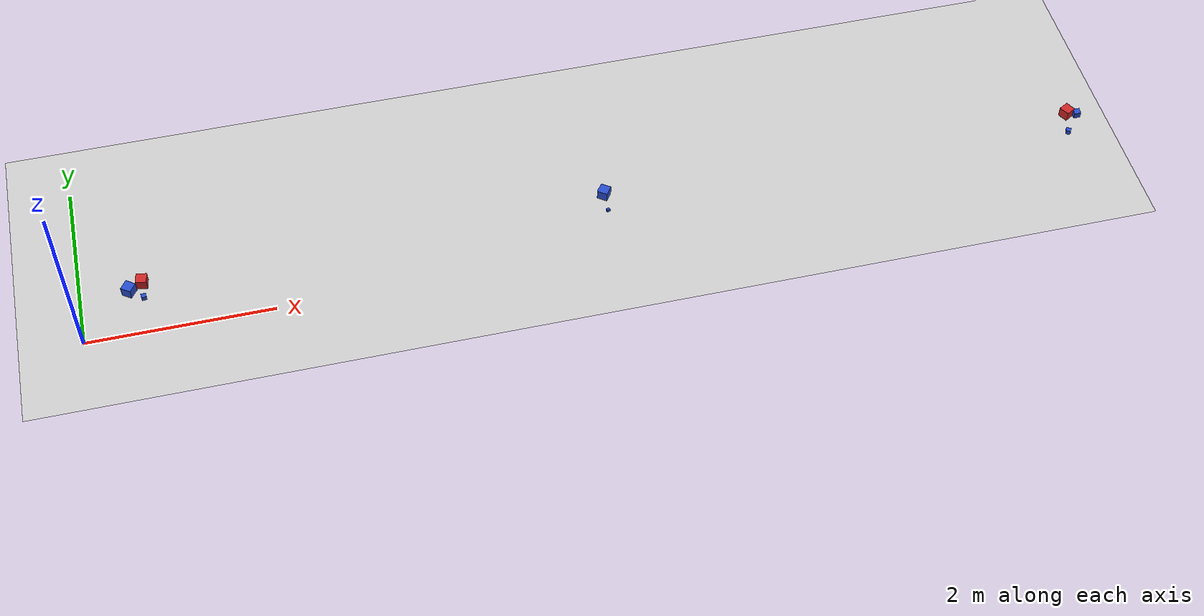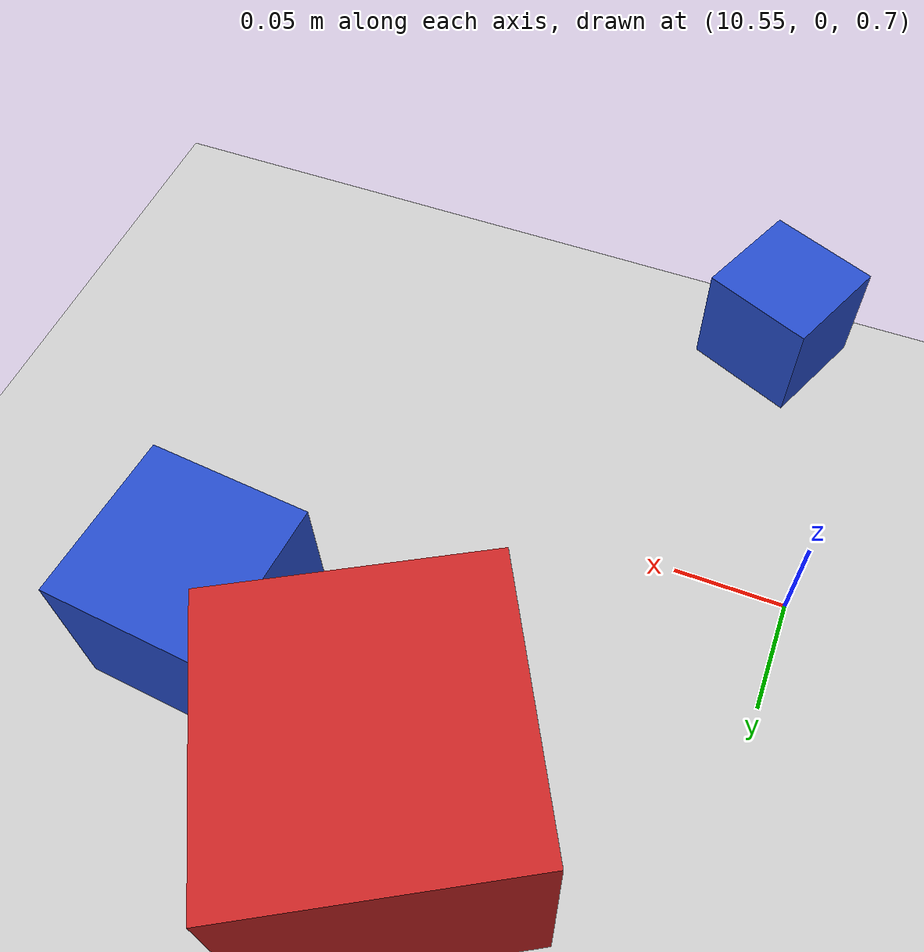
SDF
<sdf version="1.4">
 <world name="simple">
  <include><uri>model://ground_plane</uri></include>
  <include><uri>model://sun</uri></include>
  <include>
   <uri>model://blue_cube5cm</uri>
   <name>block12</name>
   <pose>0.730066971513 -0.12769212491 0.75 0 0 1.66587864993</pose>
  </include>
  <include>
   <uri>model://red_cube11cm</uri>
   <name>block13</name>
   <pose>0.727641051211 0.0737497676442 0.75 0 0 -0.150975424017</pose>
  </include>
  <include>
   <uri>model://blue_cube11cm</uri>
   <name>block14</name>
   <pose>0.591104014802 8.21343250178e-05 0.75 0 0 2.5332225067</pose>
  </include>
  <include>
   <uri>model://blue_cube3cm</uri>
   <name>block22</name>
   <pose>5.52646884927 -0.0759456710841 0.75 0 0 -1.13717460071</pose>
  </include>
  <include>
   <uri>model://blue_cube11cm</uri>
   <name>block24</name>
   <pose>5.54025575198 0.16300555334 0.75 0 0 -2.18083968026</pose>
  </include>
  <include>
   <uri>model://red_cube11cm</uri>
   <name>block31</name>
   <pose>10.6741734483 0.144886541127 0.75 0 0 -2.63304604453</pose>
  </include>
  <include>
   <uri>model://blue_cube5cm</uri>
   <name>block32</name>
   <pose>10.5894969987 -0.117903455708 0.75 0 0 -0.411705934907</pose>
  </include>
  <include>
   <uri>model://blue_cube7cm</uri>
   <name>block34</name>
   <pose>10.7703713925 0.103796053967 0.75 0 0 1.48151845706</pose>
  </include>
 </world>
</sdf>

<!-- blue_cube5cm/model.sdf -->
<sdf version='1.4'>
  <model name="blue_cube5cm">
      <static>0</static>
      <link name='link'>
        <inertial>
          <mass>0.3</mass>
          <inertia>
            <ixx>0.001</ixx>
            <ixy>0.000000</ixy>
            <ixz>0.000000</ixz>
            <iyy>0.001</iyy>
            <iyz>0.000000</iyz>
            <izz>0.001</izz>
          </inertia>
        </inertial>
        <collision name='collision'>
          <geometry>
            <box>
              <size>0.050 0.050 0.050</size>
            </box>
          </geometry>
          <surface>
            <friction>
              <ode>
                <mu>5.0</mu>
                <mu2>5.0</mu2>
              </ode>
            </friction>
            <contact>
              <ode>
                <kp>1000000.0</kp>
                <kd>100.0</kd>
                <max_vel>1.0</max_vel>
                <min_depth>0.002</min_depth>
              </ode>
            </contact>
          </surface>
        </collision>
        <visual name='visual'>
          <geometry>
            <box>
              <size>0.050 0.050 0.050</size>
            </box>
          </geometry>
          <material>
            <script>
              <uri>file://media/materials/scripts/gazebo.material</uri>
              <name>Gazebo/Blue</name>
            </script>
          </material>
        </visual>
        <velocity_decay>
          <linear>0.000000</linear>
          <angular>0.000000</angular>
        </velocity_decay>
        <self_collide>0</self_collide>
        <kinematic>0</kinematic>
        <gravity>1</gravity>
      </link>
  </model>
</sdf>

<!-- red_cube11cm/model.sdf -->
<sdf version='1.4'>
  <model name="red_cube11cm">
      <static>0</static>
      <link name='link'>
        <inertial>
          <mass>0.3</mass>
          <inertia>
            <ixx>0.001</ixx>
            <ixy>0.000000</ixy>
            <ixz>0.000000</ixz>
            <iyy>0.001</iyy>
            <iyz>0.000000</iyz>
            <izz>0.001</izz>
          </inertia>
        </inertial>
        <collision name='collision'>
          <geometry>
            <box>
              <size>0.110 0.110 0.110</size>
            </box>
          </geometry>
          <surface>
            <friction>
              <ode>
                <mu>5.0</mu>
                <mu2>5.0</mu2>
              </ode>
            </friction>
            <contact>
              <ode>
                <kp>1000000.0</kp>
                <kd>100.0</kd>
                <max_vel>1.0</max_vel>
                <min_depth>0.002</min_depth>
              </ode>
            </contact>
          </surface>
        </collision>
        <visual name='visual'>
          <geometry>
            <box>
              <size>0.110 0.110 0.110</size>
            </box>
          </geometry>
          <material>
            <script>
              <uri>file://media/materials/scripts/gazebo.material</uri>
              <name>Gazebo/Red</name>
            </script>
          </material>
        </visual>
        <velocity_decay>
          <linear>0.000000</linear>
          <angular>0.000000</angular>
        </velocity_decay>
        <self_collide>0</self_collide>
        <kinematic>0</kinematic>
        <gravity>1</gravity>
      </link>
  </model>
</sdf>

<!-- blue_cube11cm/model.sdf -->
<sdf version='1.4'>
  <model name="blue_cube11cm">
      <static>0</static>
      <link name='link'>
        <inertial>
          <mass>0.3</mass>
          <inertia>
            <ixx>0.001</ixx>
            <ixy>0.000000</ixy>
            <ixz>0.000000</ixz>
            <iyy>0.001</iyy>
            <iyz>0.000000</iyz>
            <izz>0.001</izz>
          </inertia>
        </inertial>
        <collision name='collision'>
          <geometry>
            <box>
              <size>0.110 0.110 0.110</size>
            </box>
          </geometry>
          <surface>
            <friction>
              <ode>
                <mu>5.0</mu>
                <mu2>5.0</mu2>
              </ode>
            </friction>
            <contact>
              <ode>
                <kp>1000000.0</kp>
                <kd>100.0</kd>
                <max_vel>1.0</max_vel>
                <min_depth>0.002</min_depth>
              </ode>
            </contact>
          </surface>
        </collision>
        <visual name='visual'>
          <geometry>
            <box>
              <size>0.110 0.110 0.110</size>
            </box>
          </geometry>
          <material>
            <script>
              <uri>file://media/materials/scripts/gazebo.material</uri>
              <name>Gazebo/Blue</name>
            </script>
          </material>
        </visual>
        <velocity_decay>
          <linear>0.000000</linear>
          <angular>0.000000</angular>
        </velocity_decay>
        <self_collide>0</self_collide>
        <kinematic>0</kinematic>
        <gravity>1</gravity>
      </link>
  </model>
</sdf>

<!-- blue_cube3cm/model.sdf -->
<sdf version='1.4'>
  <model name="blue_cube3cm">
      <static>0</static>
      <link name='link'>
        <inertial>
          <mass>0.3</mass>
          <inertia>
            <ixx>0.001</ixx>
            <ixy>0.000000</ixy>
            <ixz>0.000000</ixz>
            <iyy>0.001</iyy>
            <iyz>0.000000</iyz>
            <izz>0.001</izz>
          </inertia>
        </inertial>
        <collision name='collision'>
          <geometry>
            <box>
              <size>0.030 0.030 0.030</size>
            </box>
          </geometry>
          <surface>
            <friction>
              <ode>
                <mu>5.0</mu>
                <mu2>5.0</mu2>
              </ode>
            </friction>
            <contact>
              <ode>
                <kp>1000000.0</kp>
                <kd>100.0</kd>
                <max_vel>1.0</max_vel>
                <min_depth>0.002</min_depth>
              </ode>
            </contact>
          </surface>
        </collision>
        <visual name='visual'>
          <geometry>
            <box>
              <size>0.030 0.030 0.030</size>
            </box>
          </geometry>
          <material>
            <script>
              <uri>file://media/materials/scripts/gazebo.material</uri>
              <name>Gazebo/Blue</name>
            </script>
          </material>
        </visual>
        <velocity_decay>
          <linear>0.000000</linear>
          <angular>0.000000</angular>
        </velocity_decay>
        <self_collide>0</self_collide>
        <kinematic>0</kinematic>
        <gravity>1</gravity>
      </link>
  </model>
</sdf>

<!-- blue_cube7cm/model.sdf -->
<sdf version='1.4'>
  <model name="blue_cube7cm">
      <static>0</static>
      <link name='link'>
        <inertial>
          <mass>0.3</mass>
          <inertia>
            <ixx>0.001</ixx>
            <ixy>0.000000</ixy>
            <ixz>0.000000</ixz>
            <iyy>0.001</iyy>
            <iyz>0.000000</iyz>
            <izz>0.001</izz>
          </inertia>
        </inertial>
        <collision name='collision'>
          <geometry>
            <box>
              <size>0.070 0.070 0.070</size>
            </box>
          </geometry>
          <surface>
            <friction>
              <ode>
                <mu>5.0</mu>
                <mu2>5.0</mu2>
              </ode>
            </friction>
            <contact>
              <ode>
                <kp>1000000.0</kp>
                <kd>100.0</kd>
                <max_vel>1.0</max_vel>
                <min_depth>0.002</min_depth>
              </ode>
            </contact>
          </surface>
        </collision>
        <visual name='visual'>
          <geometry>
            <box>
              <size>0.070 0.070 0.070</size>
            </box>
          </geometry>
          <material>
            <script>
              <uri>file://media/materials/scripts/gazebo.material</uri>
              <name>Gazebo/Blue</name>
            </script>
          </material>
        </visual>
        <velocity_decay>
          <linear>0.000000</linear>
          <angular>0.000000</angular>
        </velocity_decay>
        <self_collide>0</self_collide>
        <kinematic>0</kinematic>
        <gravity>1</gravity>
      </link>
  </model>
</sdf>
